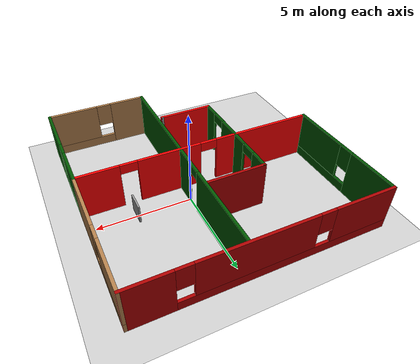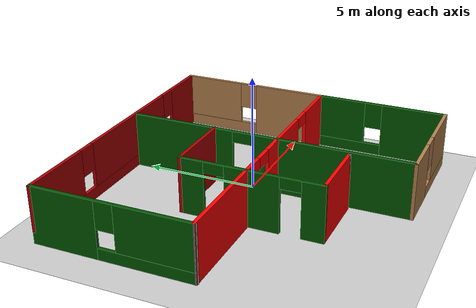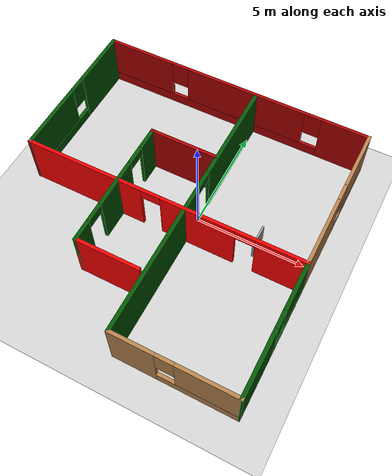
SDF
<sdf version="1.6">
 <world name="default">
  <light name="sun" type="directional">
   <pose>0 0 10 0 -0 0</pose>
   <diffuse>0.8 0.8 0.8 1</diffuse>
   <specular>0.2 0.2 0.2 1</specular>
   <attenuation>
    <range>1000</range>
    <constant>0.9</constant>
    <linear>0.01</linear>
    <quadratic>0.001</quadratic>
   </attenuation>
   <direction>-0.5 0.1 -0.9</direction>
  </light>
  <model name="ground_plane">
   <static>1</static>
   <link name="link">
    <collision name="collision">
     <geometry><plane><normal>0 0 1</normal><size>100 100</size></plane></geometry>
     <surface><friction><ode><mu>100</mu><mu2>50</mu2></ode></friction></surface>
    </collision>
    <visual name="visual">
     <cast_shadows>0</cast_shadows>
     <geometry><plane><normal>0 0 1</normal><size>100 100</size></plane></geometry>
     <material>
      <script><uri>file://media/materials/scripts/gazebo.material</uri><name>Gazebo/Grey</name></script>
     </material>
    </visual>
   </link>
  </model>
  <gravity>0 0 -9.8</gravity>
  <magnetic_field>6e-06 2.3e-05 -4.2e-05</magnetic_field>
  <atmosphere type="adiabatic"/>
  <physics name="default_physics" default="0" type="ode">
   <max_step_size>0.001</max_step_size>
   <real_time_factor>1</real_time_factor>
   <real_time_update_rate>1000</real_time_update_rate>
  </physics>
  <scene><ambient>0.4 0.4 0.4 1</ambient><background>0.7 0.7 0.7 1</background><shadows>1</shadows></scene>
  <spherical_coordinates>
   <surface_model>EARTH_WGS84</surface_model>
   <latitude_deg>0</latitude_deg>
   <longitude_deg>0</longitude_deg>
   <elevation>0</elevation>
   <heading_deg>0</heading_deg>
  </spherical_coordinates>
  <model name="unit_box">
   <pose>2.88406 -0.052854 0.5 0 -0 0</pose>
   <link name="link">
    <inertial>
     <mass>10</mass>
     <inertia>
      <ixx>0.166667</ixx>
      <ixy>0</ixy>
      <ixz>0</ixz>
      <iyy>0.166667</iyy>
      <iyz>0</iyz>
      <izz>0.166667</izz>
     </inertia>
    </inertial>
    <collision name="collision"><geometry><box><size>0.09 1 1</size></box></geometry></collision>
    <visual name="visual">
     <geometry><box><size>0.09 1 1</size></box></geometry>
     <material>
      <script><name>Gazebo/Grey</name><uri>file://media/materials/scripts/gazebo.material</uri></script>
     </material>
    </visual>
   </link>
  </model>
  <model name="casa">
   <pose>-1.0853 -0.638296 0 0 -0 0</pose>
   <link name="Wall_21">
    <pose>0.012364 -0.488304 0 0 -0 0</pose>
    <visual name="Wall_21_Visual_0">
     <pose>-3.72025 0 1.25 0 -0 0</pose>
     <geometry><box><size>5.5595 0.15 2.5</size></box></geometry>
     <material>
      <script><uri>file://media/materials/scripts/gazebo.material</uri><name>Gazebo/Grey</name></script>
      <ambient>1 0 0 1</ambient>
     </material>
     <meta><layer>0</layer></meta>
    </visual>
    <collision name="Wall_21_Collision_0">
     <geometry><box><size>5.5595 0.15 2.5</size></box></geometry>
     <pose>-3.72025 0 1.25 0 -0 0</pose>
    </collision>
    <visual name="Wall_21_Visual_1">
     <pose>1.65082 0 1.25 0 -0 0</pose>
     <geometry><box><size>3.38263 0.15 2.5</size></box></geometry>
     <material>
      <script><uri>file://media/materials/scripts/gazebo.material</uri><name>Gazebo/Grey</name></script>
      <ambient>1 0 0 1</ambient>
     </material>
     <meta><layer>0</layer></meta>
    </visual>
    <collision name="Wall_21_Collision_1">
     <geometry><box><size>3.38263 0.15 2.5</size></box></geometry>
     <pose>1.65082 0 1.25 0 -0 0</pose>
    </collision>
    <visual name="Wall_21_Visual_2">
     <pose>5.37107 0 1.25 0 -0 0</pose>
     <geometry><box><size>2.25786 0.15 2.5</size></box></geometry>
     <material>
      <script><uri>file://media/materials/scripts/gazebo.material</uri><name>Gazebo/Grey</name></script>
      <ambient>1 0 0 1</ambient>
     </material>
     <meta><layer>0</layer></meta>
    </visual>
    <collision name="Wall_21_Collision_2">
     <geometry><box><size>2.25786 0.15 2.5</size></box></geometry>
     <pose>5.37107 0 1.25 0 -0 0</pose>
    </collision>
    <visual name="Wall_21_Visual_3">
     <pose>-0.490496 0 2.25 0 -0 0</pose>
     <geometry><box><size>0.9 0.15 0.5</size></box></geometry>
     <material>
      <script><uri>file://media/materials/scripts/gazebo.material</uri><name>Gazebo/Grey</name></script>
      <ambient>1 0 0 1</ambient>
     </material>
     <meta><layer>0</layer></meta>
    </visual>
    <collision name="Wall_21_Collision_3">
     <geometry><box><size>0.9 0.15 0.5</size></box></geometry>
     <pose>-0.490496 0 2.25 0 -0 0</pose>
    </collision>
    <visual name="Wall_21_Visual_4">
     <pose>3.79214 0 2.25 0 -0 0</pose>
     <geometry><box><size>0.9 0.15 0.5</size></box></geometry>
     <material>
      <script><uri>file://media/materials/scripts/gazebo.material</uri><name>Gazebo/Grey</name></script>
      <ambient>1 0 0 1</ambient>
     </material>
     <meta><layer>0</layer></meta>
    </visual>
    <collision name="Wall_21_Collision_4">
     <geometry><box><size>0.9 0.15 0.5</size></box></geometry>
     <pose>3.79214 0 2.25 0 -0 0</pose>
    </collision>
   </link>
   <link name="Wall_22">
    <pose>6.43736 2.9367 0 0 -0 1.5708</pose>
    <visual name="Wall_22_Visual_0">
     <pose>-1.82709 0 1.25 0 -0 0</pose>
     <geometry><box><size>3.34583 0.15 2.5</size></box></geometry>
     <material>
      <script><uri>file://media/materials/scripts/gazebo.material</uri><name>Gazebo/Wood</name></script>
      <ambient>0 0.333333 0 1</ambient>
     </material>
     <meta><layer>0</layer></meta>
    </visual>
    <collision name="Wall_22_Collision_0">
     <geometry><box><size>3.34583 0.15 2.5</size></box></geometry>
     <pose>-1.82709 0 1.25 0 -0 0</pose>
    </collision>
    <visual name="Wall_22_Visual_1">
     <pose>1.67291 0 0.25 0 -0 0</pose>
     <geometry><box><size>3.65417 0.15 0.5</size></box></geometry>
     <material>
      <script><uri>file://media/materials/scripts/gazebo.material</uri><name>Gazebo/Wood</name></script>
      <ambient>0 0.333333 0 1</ambient>
     </material>
     <meta><layer>0</layer></meta>
    </visual>
    <collision name="Wall_22_Collision_1">
     <geometry><box><size>3.65417 0.15 0.5</size></box></geometry>
     <pose>1.67291 0 0.25 0 -0 0</pose>
    </collision>
    <visual name="Wall_22_Visual_2">
     <pose>2.07291 0 1.5 0 -0 0</pose>
     <geometry><box><size>2.85417 0.15 2</size></box></geometry>
     <material>
      <script><uri>file://media/materials/scripts/gazebo.material</uri><name>Gazebo/Wood</name></script>
      <ambient>0 0.333333 0 1</ambient>
     </material>
     <meta><layer>0</layer></meta>
    </visual>
    <collision name="Wall_22_Collision_2">
     <geometry><box><size>2.85417 0.15 2</size></box></geometry>
     <pose>2.07291 0 1.5 0 -0 0</pose>
    </collision>
    <visual name="Wall_22_Visual_3">
     <pose>0.245827 0 1.9 0 -0 0</pose>
     <geometry><box><size>0.8 0.15 1.2</size></box></geometry>
     <material>
      <script><uri>file://media/materials/scripts/gazebo.material</uri><name>Gazebo/Wood</name></script>
      <ambient>0 0.333333 0 1</ambient>
     </material>
     <meta><layer>0</layer></meta>
    </visual>
    <collision name="Wall_22_Collision_3">
     <geometry><box><size>0.8 0.15 1.2</size></box></geometry>
     <pose>0.245827 0 1.9 0 -0 0</pose>
    </collision>
   </link>
   <link name="Wall_23">
    <pose>0.012364 6.3617 0 0 -0 3.14159</pose>
    <visual name="Wall_23_Visual_0">
     <pose>-5.37666 0 1.25 0 -0 0</pose>
     <geometry><box><size>2.24668 0.15 2.5</size></box></geometry>
     <material>
      <script><uri>file://media/materials/scripts/gazebo.material</uri><name>Gazebo/Grey</name></script>
      <ambient>0.666667 0 0 1</ambient>
     </material>
     <meta><layer>0</layer></meta>
    </visual>
    <collision name="Wall_23_Collision_0">
     <geometry><box><size>2.24668 0.15 2.5</size></box></geometry>
     <pose>-5.37666 0 1.25 0 -0 0</pose>
    </collision>
    <visual name="Wall_23_Visual_1">
     <pose>1.12334 0 0.25 0 -0 0</pose>
     <geometry><box><size>10.7533 0.15 0.5</size></box></geometry>
     <material>
      <script><uri>file://media/materials/scripts/gazebo.material</uri><name>Gazebo/Grey</name></script>
      <ambient>0.666667 0 0 1</ambient>
     </material>
     <meta><layer>0</layer></meta>
    </visual>
    <collision name="Wall_23_Collision_1">
     <geometry><box><size>10.7533 0.15 0.5</size></box></geometry>
     <pose>1.12334 0 0.25 0 -0 0</pose>
    </collision>
    <visual name="Wall_23_Visual_2">
     <pose>-0.534277 0 1.5 0 -0 0</pose>
     <geometry><box><size>5.83808 0.15 2</size></box></geometry>
     <material>
      <script><uri>file://media/materials/scripts/gazebo.material</uri><name>Gazebo/Grey</name></script>
      <ambient>0.666667 0 0 1</ambient>
     </material>
     <meta><layer>0</layer></meta>
    </visual>
    <collision name="Wall_23_Collision_2">
     <geometry><box><size>5.83808 0.15 2</size></box></geometry>
     <pose>-0.534277 0 1.5 0 -0 0</pose>
    </collision>
    <visual name="Wall_23_Visual_3">
     <pose>4.84238 0 1.5 0 -0 0</pose>
     <geometry><box><size>3.31524 0.15 2</size></box></geometry>
     <material>
      <script><uri>file://media/materials/scripts/gazebo.material</uri><name>Gazebo/Grey</name></script>
      <ambient>0.666667 0 0 1</ambient>
     </material>
     <meta><layer>0</layer></meta>
    </visual>
    <collision name="Wall_23_Collision_3">
     <geometry><box><size>3.31524 0.15 2</size></box></geometry>
     <pose>4.84238 0 1.5 0 -0 0</pose>
    </collision>
    <visual name="Wall_23_Visual_4">
     <pose>-3.85332 0 1.9 0 -0 0</pose>
     <geometry><box><size>0.8 0.15 1.2</size></box></geometry>
     <material>
      <script><uri>file://media/materials/scripts/gazebo.material</uri><name>Gazebo/Grey</name></script>
      <ambient>0.666667 0 0 1</ambient>
     </material>
     <meta><layer>0</layer></meta>
    </visual>
    <collision name="Wall_23_Collision_4">
     <geometry><box><size>0.8 0.15 1.2</size></box></geometry>
     <pose>-3.85332 0 1.9 0 -0 0</pose>
    </collision>
    <visual name="Wall_23_Visual_5">
     <pose>2.78476 0 1.9 0 -0 0</pose>
     <geometry><box><size>0.8 0.15 1.2</size></box></geometry>
     <material>
      <script><uri>file://media/materials/scripts/gazebo.material</uri><name>Gazebo/Grey</name></script>
      <ambient>0.666667 0 0 1</ambient>
     </material>
     <meta><layer>0</layer></meta>
    </visual>
    <collision name="Wall_23_Collision_5">
     <geometry><box><size>0.8 0.15 1.2</size></box></geometry>
     <pose>2.78476 0 1.9 0 -0 0</pose>
    </collision>
   </link>
   <link name="Wall_24">
    <pose>-6.41264 2.9367 0 0 0 -1.5708</pose>
    <visual name="Wall_24_Visual_0">
     <pose>-2.05762 0 1.25 0 -0 0</pose>
     <geometry><box><size>2.88476 0.15 2.5</size></box></geometry>
     <material>
      <script><uri>file://media/materials/scripts/gazebo.material</uri><name>Gazebo/Grey</name></script>
      <ambient>0 0.333333 0 1</ambient>
     </material>
     <meta><layer>0</layer></meta>
    </visual>
    <collision name="Wall_24_Collision_0">
     <geometry><box><size>2.88476 0.15 2.5</size></box></geometry>
     <pose>-2.05762 0 1.25 0 -0 0</pose>
    </collision>
    <visual name="Wall_24_Visual_1">
     <pose>1.44238 0 0.25 0 -0 0</pose>
     <geometry><box><size>4.11524 0.15 0.5</size></box></geometry>
     <material>
      <script><uri>file://media/materials/scripts/gazebo.material</uri><name>Gazebo/Grey</name></script>
      <ambient>0 0.333333 0 1</ambient>
     </material>
     <meta><layer>0</layer></meta>
    </visual>
    <collision name="Wall_24_Collision_1">
     <geometry><box><size>4.11524 0.15 0.5</size></box></geometry>
     <pose>1.44238 0 0.25 0 -0 0</pose>
    </collision>
    <visual name="Wall_24_Visual_2">
     <pose>1.84238 0 1.5 0 -0 0</pose>
     <geometry><box><size>3.31524 0.15 2</size></box></geometry>
     <material>
      <script><uri>file://media/materials/scripts/gazebo.material</uri><name>Gazebo/Grey</name></script>
      <ambient>0 0.333333 0 1</ambient>
     </material>
     <meta><layer>0</layer></meta>
    </visual>
    <collision name="Wall_24_Collision_2">
     <geometry><box><size>3.31524 0.15 2</size></box></geometry>
     <pose>1.84238 0 1.5 0 -0 0</pose>
    </collision>
    <visual name="Wall_24_Visual_3">
     <pose>-0.215237 0 1.9 0 -0 0</pose>
     <geometry><box><size>0.8 0.15 1.2</size></box></geometry>
     <material>
      <script><uri>file://media/materials/scripts/gazebo.material</uri><name>Gazebo/Grey</name></script>
      <ambient>0 0.333333 0 1</ambient>
     </material>
     <meta><layer>0</layer></meta>
    </visual>
    <collision name="Wall_24_Collision_3">
     <geometry><box><size>0.8 0.15 1.2</size></box></geometry>
     <pose>-0.215237 0 1.9 0 -0 0</pose>
    </collision>
   </link>
   <link name="Wall_25">
    <collision name="Wall_25_Collision">
     <geometry><box><size>0.15 0.15 2.5</size></box></geometry>
     <pose>0 0 1.25 0 -0 0</pose>
    </collision>
    <visual name="Wall_25_Visual">
     <pose>0 0 1.25 0 -0 0</pose>
     <geometry><box><size>0.15 0.15 2.5</size></box></geometry>
     <material>
      <script><uri>file://media/materials/scripts/gazebo.material</uri><name>Gazebo/Grey</name></script>
      <ambient>1 1 1 1</ambient>
     </material>
     <meta><layer>0</layer></meta>
    </visual>
    <pose>-6.41264 -0.488304 0 0 -0 1.13095</pose>
   </link>
   <link name="Wall_26">
    <collision name="Wall_26_Collision">
     <geometry><box><size>0.15 0.15 2.5</size></box></geometry>
     <pose>0 0 1.25 0 -0 0</pose>
    </collision>
    <visual name="Wall_26_Visual">
     <pose>0 0 1.25 0 -0 0</pose>
     <geometry><box><size>0.15 0.15 2.5</size></box></geometry>
     <material>
      <script><uri>file://media/materials/scripts/gazebo.material</uri><name>Gazebo/Grey</name></script>
      <ambient>1 1 1 1</ambient>
     </material>
     <meta><layer>0</layer></meta>
    </visual>
    <pose>-6.41264 -0.488304 0 0 -0 1.13095</pose>
   </link>
   <link name="Wall_28">
    <pose>1.08197 -0.061628 0 0 -0 1.5708</pose>
    <visual name="Wall_28_Visual_0">
     <pose>-2.83049 0 1.25 0 -0 0</pose>
     <geometry><box><size>7.08902 0.15 2.5</size></box></geometry>
     <material>
      <script><uri>file://media/materials/scripts/gazebo.material</uri><name>Gazebo/Grey</name></script>
      <ambient>0 0.333333 0 1</ambient>
     </material>
     <meta><layer>0</layer></meta>
    </visual>
    <collision name="Wall_28_Collision_0">
     <geometry><box><size>7.08902 0.15 2.5</size></box></geometry>
     <pose>-2.83049 0 1.25 0 -0 0</pose>
    </collision>
    <visual name="Wall_28_Visual_1">
     <pose>3.99451 0 1.25 0 -0 0</pose>
     <geometry><box><size>4.76098 0.15 2.5</size></box></geometry>
     <material>
      <script><uri>file://media/materials/scripts/gazebo.material</uri><name>Gazebo/Grey</name></script>
      <ambient>0 0.333333 0 1</ambient>
     </material>
     <meta><layer>0</layer></meta>
    </visual>
    <collision name="Wall_28_Collision_1">
     <geometry><box><size>4.76098 0.15 2.5</size></box></geometry>
     <pose>3.99451 0 1.25 0 -0 0</pose>
    </collision>
    <visual name="Wall_28_Visual_2">
     <pose>1.16402 0 2.25 0 -0 0</pose>
     <geometry><box><size>0.9 0.15 0.5</size></box></geometry>
     <material>
      <script><uri>file://media/materials/scripts/gazebo.material</uri><name>Gazebo/Grey</name></script>
      <ambient>0 0.333333 0 1</ambient>
     </material>
     <meta><layer>0</layer></meta>
    </visual>
    <collision name="Wall_28_Collision_2">
     <geometry><box><size>0.9 0.15 0.5</size></box></geometry>
     <pose>1.16402 0 2.25 0 -0 0</pose>
    </collision>
   </link>
   <link name="Wall_30">
    <pose>3.75697 -6.36163 0 0 -0 0</pose>
    <visual name="Wall_30_Visual_0">
     <pose>-1.75007 0 1.25 0 -0 0</pose>
     <geometry><box><size>1.99986 0.15 2.5</size></box></geometry>
     <material>
      <script><uri>file://media/materials/scripts/gazebo.material</uri><name>Gazebo/Wood</name></script>
      <ambient>1 0 0 1</ambient>
     </material>
     <meta><layer>0</layer></meta>
    </visual>
    <collision name="Wall_30_Collision_0">
     <geometry><box><size>1.99986 0.15 2.5</size></box></geometry>
     <pose>-1.75007 0 1.25 0 -0 0</pose>
    </collision>
    <visual name="Wall_30_Visual_1">
     <pose>0.999929 0 0.25 0 -0 0</pose>
     <geometry><box><size>3.50014 0.15 0.5</size></box></geometry>
     <material>
      <script><uri>file://media/materials/scripts/gazebo.material</uri><name>Gazebo/Wood</name></script>
      <ambient>1 0 0 1</ambient>
     </material>
     <meta><layer>0</layer></meta>
    </visual>
    <collision name="Wall_30_Collision_1">
     <geometry><box><size>3.50014 0.15 0.5</size></box></geometry>
     <pose>0.999929 0 0.25 0 -0 0</pose>
    </collision>
    <visual name="Wall_30_Visual_2">
     <pose>1.39993 0 1.5 0 -0 0</pose>
     <geometry><box><size>2.70014 0.15 2</size></box></geometry>
     <material>
      <script><uri>file://media/materials/scripts/gazebo.material</uri><name>Gazebo/Wood</name></script>
      <ambient>1 0 0 1</ambient>
     </material>
     <meta><layer>0</layer></meta>
    </visual>
    <collision name="Wall_30_Collision_2">
     <geometry><box><size>2.70014 0.15 2</size></box></geometry>
     <pose>1.39993 0 1.5 0 -0 0</pose>
    </collision>
    <visual name="Wall_30_Visual_3">
     <pose>-0.350143 0 1.9 0 -0 0</pose>
     <geometry><box><size>0.8 0.15 1.2</size></box></geometry>
     <material>
      <script><uri>file://media/materials/scripts/gazebo.material</uri><name>Gazebo/Wood</name></script>
      <ambient>1 0 0 1</ambient>
     </material>
     <meta><layer>0</layer></meta>
    </visual>
    <collision name="Wall_30_Collision_3">
     <geometry><box><size>0.8 0.15 1.2</size></box></geometry>
     <pose>-0.350143 0 1.9 0 -0 0</pose>
    </collision>
   </link>
   <link name="Wall_31">
    <pose>6.43467 -3.42497 0 0 -0 1.56988</pose>
    <visual name="Wall_31_Visual_0">
     <pose>-1.53757 0 1.25 0 -0 0</pose>
     <geometry><box><size>2.94818 0.15 2.5</size></box></geometry>
     <material>
      <script><uri>file://media/materials/scripts/gazebo.material</uri><name>Gazebo/Grey</name></script>
      <ambient>0 0.333333 0 1</ambient>
     </material>
     <meta><layer>0</layer></meta>
    </visual>
    <collision name="Wall_31_Collision_0">
     <geometry><box><size>2.94818 0.15 2.5</size></box></geometry>
     <pose>-1.53757 0 1.25 0 -0 0</pose>
    </collision>
    <visual name="Wall_31_Visual_1">
     <pose>1.47409 0 0.25 0 -0 0</pose>
     <geometry><box><size>3.07514 0.15 0.5</size></box></geometry>
     <material>
      <script><uri>file://media/materials/scripts/gazebo.material</uri><name>Gazebo/Grey</name></script>
      <ambient>0 0.333333 0 1</ambient>
     </material>
     <meta><layer>0</layer></meta>
    </visual>
    <collision name="Wall_31_Collision_1">
     <geometry><box><size>3.07514 0.15 0.5</size></box></geometry>
     <pose>1.47409 0 0.25 0 -0 0</pose>
    </collision>
    <visual name="Wall_31_Visual_2">
     <pose>1.87409 0 1.5 0 -0 0</pose>
     <geometry><box><size>2.27514 0.15 2</size></box></geometry>
     <material>
      <script><uri>file://media/materials/scripts/gazebo.material</uri><name>Gazebo/Grey</name></script>
      <ambient>0 0.333333 0 1</ambient>
     </material>
     <meta><layer>0</layer></meta>
    </visual>
    <collision name="Wall_31_Collision_2">
     <geometry><box><size>2.27514 0.15 2</size></box></geometry>
     <pose>1.87409 0 1.5 0 -0 0</pose>
    </collision>
    <visual name="Wall_31_Visual_3">
     <pose>0.336521 0 1.9 0 -0 0</pose>
     <geometry><box><size>0.8 0.15 1.2</size></box></geometry>
     <material>
      <script><uri>file://media/materials/scripts/gazebo.material</uri><name>Gazebo/Grey</name></script>
      <ambient>0 0.333333 0 1</ambient>
     </material>
     <meta><layer>0</layer></meta>
    </visual>
    <collision name="Wall_31_Collision_3">
     <geometry><box><size>0.8 0.15 1.2</size></box></geometry>
     <pose>0.336521 0 1.9 0 -0 0</pose>
    </collision>
   </link>
   <link name="Wall_32">
    <collision name="Wall_32_Collision">
     <geometry><box><size>0.15 0.15 2.5</size></box></geometry>
     <pose>0 0 1.25 0 -0 0</pose>
    </collision>
    <visual name="Wall_32_Visual">
     <pose>0 0 1.25 0 -0 0</pose>
     <geometry><box><size>0.15 0.15 2.5</size></box></geometry>
     <material>
      <script><uri>file://media/materials/scripts/gazebo.material</uri><name>Gazebo/Grey</name></script>
      <ambient>1 1 1 1</ambient>
     </material>
     <meta><layer>0</layer></meta>
    </visual>
    <pose>6.43736 -0.488304 0 0 -0 0</pose>
   </link>
   <link name="Wall_34">
    <collision name="Wall_34_Collision">
     <geometry><box><size>3.25 0.15 2.5</size></box></geometry>
     <pose>0 0 1.25 0 -0 0</pose>
    </collision>
    <visual name="Wall_34_Visual">
     <pose>0 0 1.25 0 -0 0</pose>
     <geometry><box><size>3.25 0.15 2.5</size></box></geometry>
     <material>
      <script><uri>file://media/materials/scripts/gazebo.material</uri><name>Gazebo/Grey</name></script>
      <ambient>0.666667 0 0 1</ambient>
     </material>
     <meta><layer>0</layer></meta>
    </visual>
    <pose>-0.498621 2.41777 0 0 -0 3.14159</pose>
   </link>
   <link name="Wall_35">
    <pose>-2.04862 -0.632232 0 0 0 -1.5708</pose>
    <visual name="Wall_35_Visual_0">
     <pose>-2.56304 0 1.25 0 -0 0</pose>
     <geometry><box><size>1.12392 0.15 2.5</size></box></geometry>
     <material>
      <script><uri>file://media/materials/scripts/gazebo.material</uri><name>Gazebo/Grey</name></script>
      <ambient>0 0.333333 0 1</ambient>
     </material>
     <meta><layer>0</layer></meta>
    </visual>
    <collision name="Wall_35_Collision_0">
     <geometry><box><size>1.12392 0.15 2.5</size></box></geometry>
     <pose>-2.56304 0 1.25 0 -0 0</pose>
    </collision>
    <visual name="Wall_35_Visual_1">
     <pose>0.070203 0 1.25 0 -0 0</pose>
     <geometry><box><size>2.34256 0.15 2.5</size></box></geometry>
     <material>
      <script><uri>file://media/materials/scripts/gazebo.material</uri><name>Gazebo/Grey</name></script>
      <ambient>0 0.333333 0 1</ambient>
     </material>
     <meta><layer>0</layer></meta>
    </visual>
    <collision name="Wall_35_Collision_1">
     <geometry><box><size>2.34256 0.15 2.5</size></box></geometry>
     <pose>0.070203 0 1.25 0 -0 0</pose>
    </collision>
    <visual name="Wall_35_Visual_2">
     <pose>2.63324 0 1.25 0 -0 0</pose>
     <geometry><box><size>0.983515 0.15 2.5</size></box></geometry>
     <material>
      <script><uri>file://media/materials/scripts/gazebo.material</uri><name>Gazebo/Grey</name></script>
      <ambient>0 0.333333 0 1</ambient>
     </material>
     <meta><layer>0</layer></meta>
    </visual>
    <collision name="Wall_35_Collision_2">
     <geometry><box><size>0.983515 0.15 2.5</size></box></geometry>
     <pose>2.63324 0 1.25 0 -0 0</pose>
    </collision>
    <visual name="Wall_35_Visual_3">
     <pose>-1.55108 0 2.25 0 -0 0</pose>
     <geometry><box><size>0.9 0.15 0.5</size></box></geometry>
     <material>
      <script><uri>file://media/materials/scripts/gazebo.material</uri><name>Gazebo/Grey</name></script>
      <ambient>0 0.333333 0 1</ambient>
     </material>
     <meta><layer>0</layer></meta>
    </visual>
    <collision name="Wall_35_Collision_3">
     <geometry><box><size>0.9 0.15 0.5</size></box></geometry>
     <pose>-1.55108 0 2.25 0 -0 0</pose>
    </collision>
    <visual name="Wall_35_Visual_4">
     <pose>1.69148 0 2.25 0 -0 0</pose>
     <geometry><box><size>0.9 0.15 0.5</size></box></geometry>
     <material>
      <script><uri>file://media/materials/scripts/gazebo.material</uri><name>Gazebo/Grey</name></script>
      <ambient>0 0.333333 0 1</ambient>
     </material>
     <meta><layer>0</layer></meta>
    </visual>
    <collision name="Wall_35_Collision_4">
     <geometry><box><size>0.9 0.15 0.5</size></box></geometry>
     <pose>1.69148 0 2.25 0 -0 0</pose>
    </collision>
   </link>
   <link name="Wall_36">
    <collision name="Wall_36_Collision">
     <geometry><box><size>3 0.15 2.5</size></box></geometry>
     <pose>0 0 1.25 0 -0 0</pose>
    </collision>
    <visual name="Wall_36_Visual">
     <pose>0 0 1.25 0 -0 0</pose>
     <geometry><box><size>3 0.15 2.5</size></box></geometry>
     <material>
      <script><uri>file://media/materials/scripts/gazebo.material</uri><name>Gazebo/Grey</name></script>
      <ambient>1 0 0 1</ambient>
     </material>
     <meta><layer>0</layer></meta>
    </visual>
    <pose>-0.623621 -3.68223 0 0 -0 0</pose>
   </link>
   <link name="Wall_37">
    <collision name="Wall_37_Collision">
     <geometry><box><size>0.15 0.15 2.5</size></box></geometry>
     <pose>0 0 1.25 0 -0 0</pose>
    </collision>
    <visual name="Wall_37_Visual">
     <pose>0 0 1.25 0 -0 0</pose>
     <geometry><box><size>0.15 0.15 2.5</size></box></geometry>
     <material>
      <script><uri>file://media/materials/scripts/gazebo.material</uri><name>Gazebo/Grey</name></script>
      <ambient>1 1 1 1</ambient>
     </material>
     <meta><layer>0</layer></meta>
    </visual>
    <pose>0.801379 -3.68223 0 0 -0 0</pose>
   </link>
   <static>1</static>
  </model>
 </world>
</sdf>
